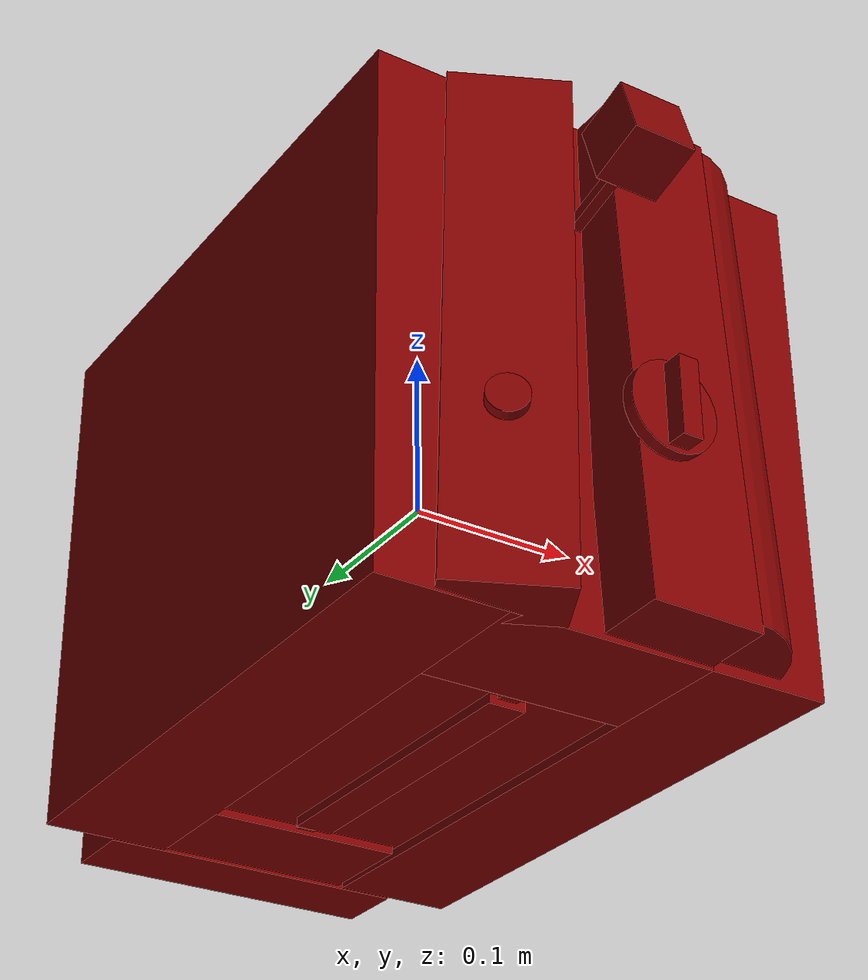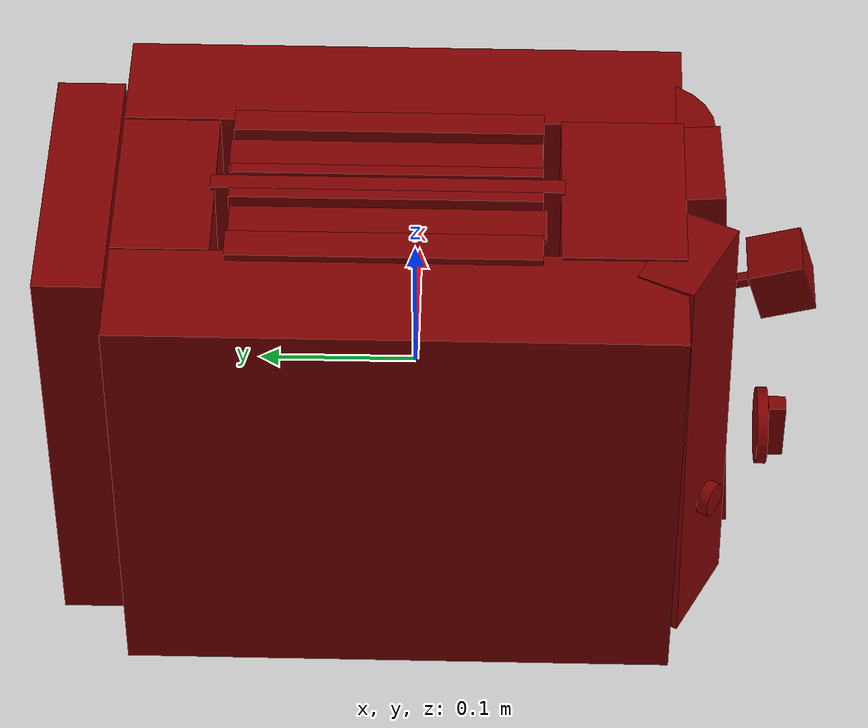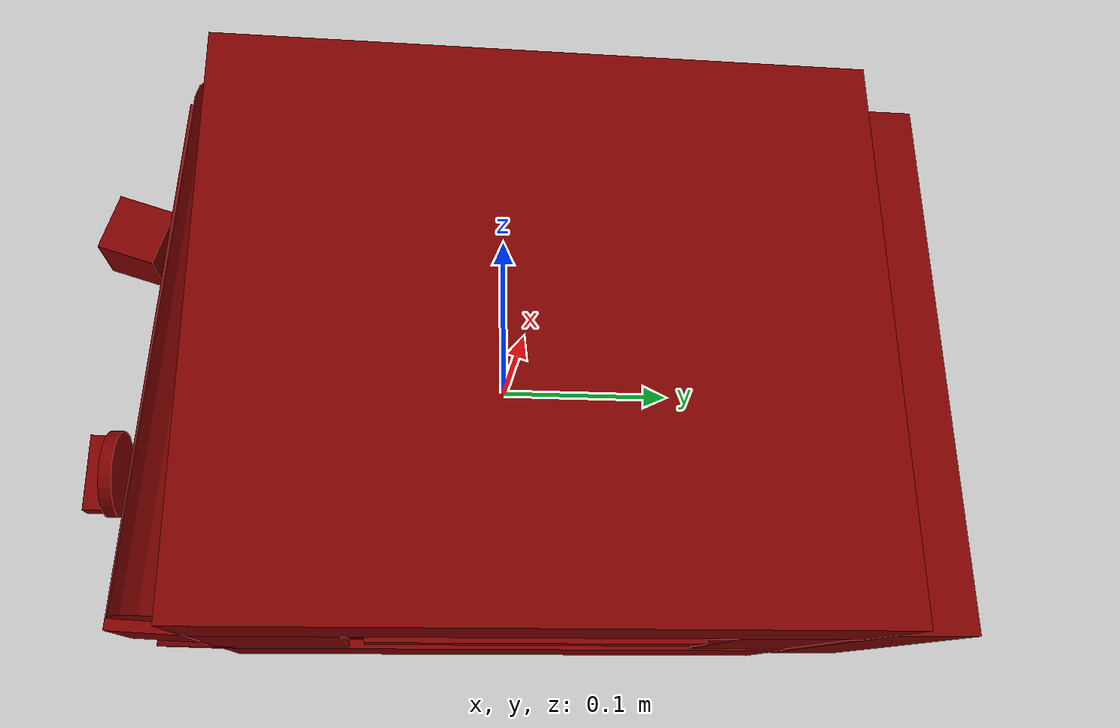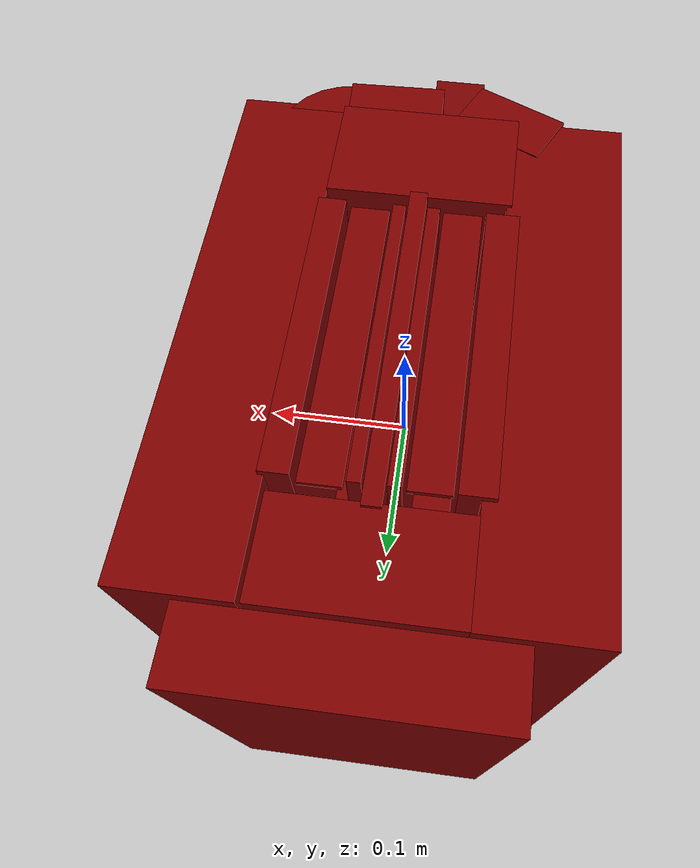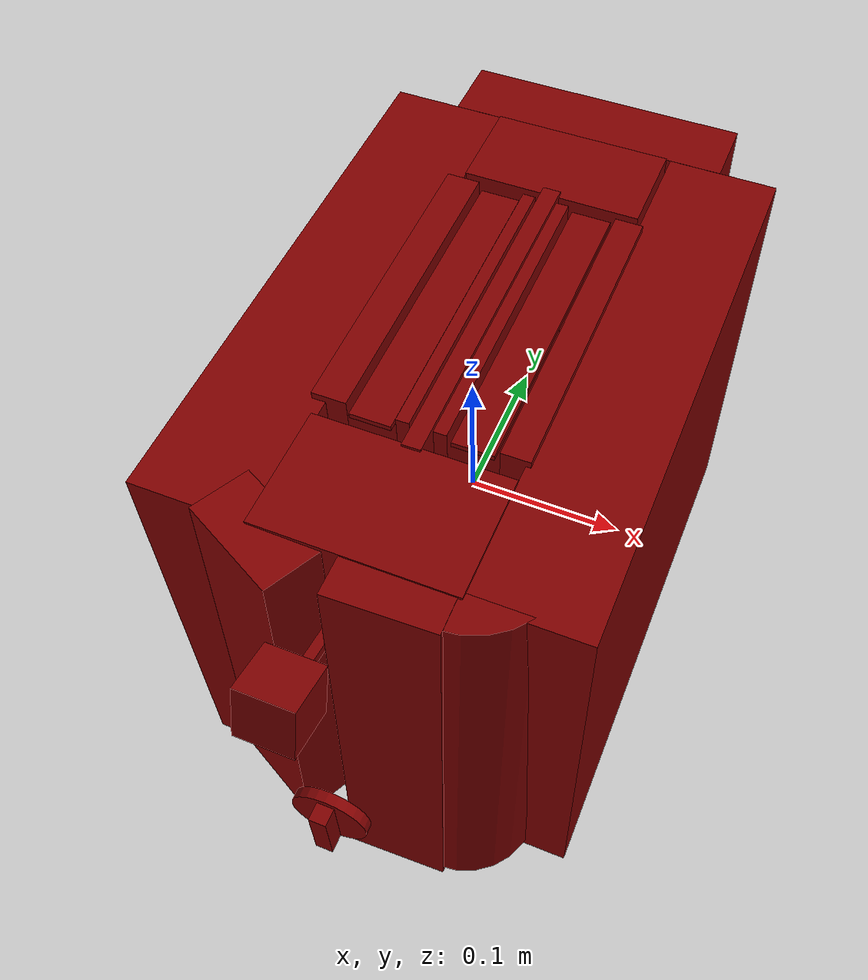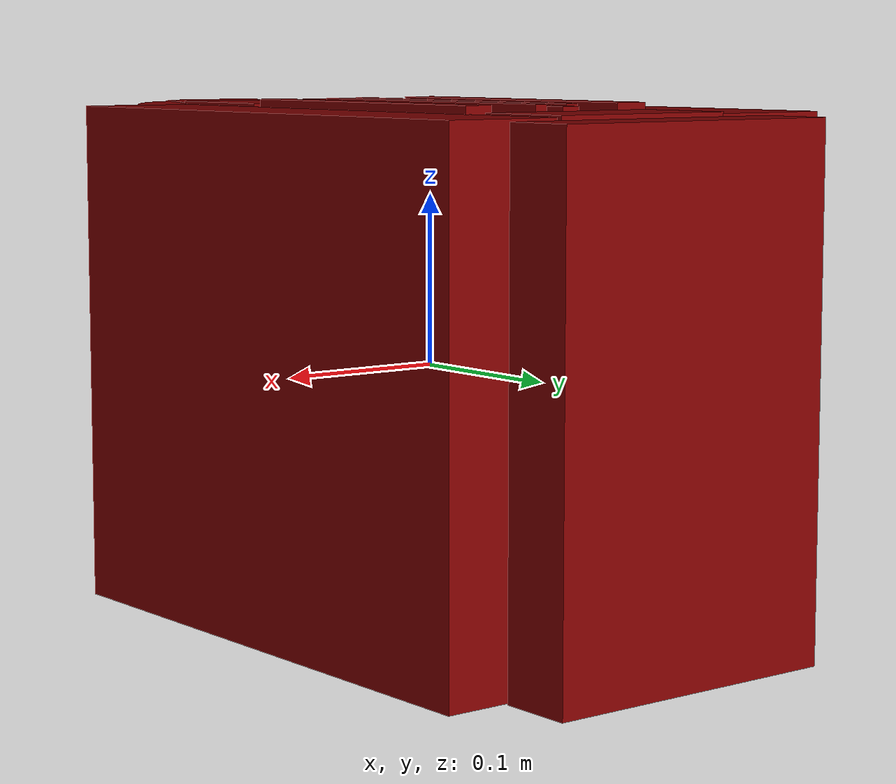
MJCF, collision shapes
<?xml version='1.0' encoding='UTF-8'?>
<mujoco model="model">
  <compiler angle="radian"/>
  <asset>
    <mesh file="visuals/Body001.obj" name="Body001_vis"/>
    <mesh file="visuals/Body002.obj" name="Body002_vis"/>
    <mesh file="visuals/Button001.obj" name="Button001_vis"/>
    <mesh file="visuals/Knob001.obj" name="Knob001_vis"/>
    <mesh file="visuals/Lever001.obj" name="Lever001_vis"/>
    <texture file="visuals/T_BC001.png" name="Body001_material" type="2d"/>
    <material name="Body001_material" rgba="1 1 1 1.0" texture="Body001_material" shininess="0.141421377658844" specular="0.3103448502657381"/>
    <texture file="visuals/T_BC001.png" name="Body002_material" type="2d"/>
    <material name="Body002_material" rgba="1 1 1 1.0" texture="Body002_material" shininess="0.141421377658844" specular="0.3103448502657381"/>
    <texture file="visuals/T_BC001.png" name="Button001_material" type="2d"/>
    <material name="Button001_material" rgba="1 1 1 1.0" texture="Button001_material" shininess="0.141421377658844" specular="0.3103448502657381"/>
    <texture file="visuals/T_BC001.png" name="Knob001_material" type="2d"/>
    <material name="Knob001_material" rgba="1 1 1 1.0" texture="Knob001_material" shininess="0.141421377658844" specular="0.3103448502657381"/>
    <texture file="visuals/T_BC001.png" name="Lever001_material" type="2d"/>
    <material name="Lever001_material" rgba="1 1 1 1.0" texture="Lever001_material" shininess="0.141421377658844" specular="0.3103448502657381"/>
  </asset>
  <default>
    <default class="visual">
      <geom conaffinity="0" contype="0" group="1" type="mesh"/>
    </default>
    <default class="collision">
      <geom group="0" rgba="0.5 0 0 0.5"/>
    </default>
    <default class="spawn">
      <geom group="0" rgba="1 1 1 0.5" contype="0" conaffinity="0"/>
      <site group="0" rgba="1 1 1 0.5"/>
    </default>
    <default class="region">
      <geom group="1" conaffinity="0" contype="0" rgba="0 1 0 0"/>
    </default>
  </default>
  <worldbody>
    <body>
      <body name="object">
        <geom mesh="Body001_vis" type="mesh" solimp="0.998 0.998 0.001" solref="0.001 1" density="100" friction="0.95 0.3 0.1" class="visual" material="Body001_material"/>
        <geom class="collision" type="box" pos="0.097324 0.008937 0.000482" size="0.03477196767926216 0.1749858260154724 0.14931738376617432" quat="1.0 0.0 0.0 0.0"/>
        <geom class="collision" type="box" pos="0.002510 -0.127867 0.001415" size="0.060178838670253754 0.03818193078041077 0.15024982392787933" quat="1.0 0.0 0.0 0.0"/>
        <geom class="collision" type="box" pos="0.002510 0.153569 0.001470" size="0.05729693919420242 0.030353715643286705 0.14931471645832062" quat="1.0 0.0 0.0 0.0"/>
        <geom class="collision" type="box" pos="0.004523 0.207233 -0.000266" size="0.09067270904779434 0.02142288349568844 0.14856651425361633" quat="1.0 0.0 0.0 0.0"/>
        <geom class="collision" type="box" pos="0.028037 -0.179501 0.001777" size="0.03240758180618286 0.018605414777994156 0.14931736886501312" quat="0.9995090961456299 -0.02830427512526512 -0.0002549346536397934 0.013431265950202942"/>
        <geom class="collision" type="box" pos="0.002510 0.017086 -0.013903" size="0.010774740017950535 0.09621493518352509 0.1349322497844696" quat="1.0 0.0 0.0 0.0"/>
        <geom class="collision" type="box" pos="-0.091009 0.008937 0.000482" size="0.03647923842072487 0.1749858260154724 0.14931738376617432" quat="1.0 0.0 0.0 0.0"/>
        <geom class="collision" type="box" pos="0.002510 0.017011 0.003987" size="0.005677978042513132 0.10907050967216492 0.14931704103946686" quat="1.0 0.0 0.0 0.0"/>
        <geom class="collision" type="box" pos="0.002510 0.017086 -0.135707" size="0.08502741158008575 0.12783825397491455 0.0076886191964149475" quat="1.0 0.0 0.0 0.0"/>
        <geom class="collision" type="cylinder" pos="0.057111 -0.147129 0.002444" size="0.04844741150736809 0.14617568254470825" quat="0.9995211362838745 -0.030944231897592545 -6.8709997464094884e-18 -9.504295779792034e-25"/>
        <geom class="collision" type="box" pos="-0.056065 -0.168523 0.000907" size="0.03240757808089256 0.018605414777994156 0.14931738376617432" quat="0.9727725982666016 -0.009991034865379333 0.015632834285497665 -0.23101787269115448"/>
        <body name="Body002">
          <geom mesh="Body002_vis" type="mesh" solimp="0.998 0.998 0.001" solref="0.001 1" density="100" friction="0.95 0.3 0.1" class="visual" material="Body002_material"/>
          <geom class="collision" type="box" pos="-0.052396 0.017786 0.058370" size="0.010541500523686409 0.09654990583658218 0.09608542919158936" quat="1.0 0.0 0.0 0.0"/>
          <geom class="collision" type="box" pos="-0.008388 0.017786 0.058370" size="0.003973815590143204 0.09654990583658218 0.09608542919158936" quat="1.0 0.0 0.0 0.0"/>
          <geom class="collision" type="box" pos="0.013553 0.017786 0.058370" size="0.003973815590143204 0.09654990583658218 0.09608542919158936" quat="1.0 0.0 0.0 0.0"/>
          <geom class="collision" type="box" pos="0.056756 0.017786 0.058370" size="0.008824016898870468 0.09654990583658218 0.09608542919158936" quat="1.0 0.0 0.0 0.0"/>
        </body>
        <body name="Button001">
          <joint axis="0.0 1.0 0.0" pos="-0.068716 -0.187764 -0.050512" limited="true" name="Button001_joint" range="0.0 0.0025" type="slide" damping="1" frictionloss="1" armature=".01" stiffness="0.05"/>
          <geom mesh="Button001_vis" type="mesh" solimp="0.998 0.998 0.001" solref="0.001 1" density="100" friction="0.95 0.3 0.1" class="visual" material="Button001_material"/>
          <geom class="collision" type="cylinder" pos="-0.069649 -0.189482 -0.050556" size="0.01105516403913498 0.0034786080941557884" quat="0.6980993151664734 0.6687564849853516 -0.17713183164596558 -0.18451668322086334"/>
        </body>
        <body name="Knob001">
          <joint axis="0.0 1.0 0.0" pos="-0.001919 -0.227984 -0.054317" limited="true" name="Knob001_joint" range="0.0 5.148721293383272" type="hinge" damping="0.05" armature="0.001"/>
          <geom mesh="Knob001_vis" type="mesh" solimp="0.998 0.998 0.001" solref="0.001 1" density="100" friction="0.95 0.3 0.1" class="visual" material="Knob001_material"/>
          <geom class="collision" type="box" pos="-0.001777 -0.234231 -0.054688" size="0.005658698733896017 0.005658698733896017 0.021840764209628105" quat="1.0 0.0 0.0 0.0"/>
          <geom class="collision" type="cylinder" pos="-0.001995 -0.224601 -0.054282" size="0.024918224662542343 0.003509973408654332" quat="0.7071067094802856 0.7071068286895752 0.0 0.0"/>
        </body>
        <body name="Lever001">
          <joint axis="0.0 0.0 -1.0" pos="-0.013004 -0.206555 0.096381" limited="true" name="Lever001_joint" range="0.0 0.09" type="slide" damping="1" frictionloss="1" armature=".01" stiffness="1" springref="-1.78"/>
          <geom mesh="Lever001_vis" type="mesh" solimp="0.998 0.998 0.001" solref="0.001 1" density="100" friction="0.95 0.3 0.1" class="visual" material="Lever001_material"/>
          <geom class="collision" type="box" pos="-0.012626 -0.190767 0.086732" size="0.0032166733872145414 0.02023816481232643 0.0032166740857064724" quat="0.991601288318634 -0.12933264672756195 2.385926210856731e-17 -5.251995115816093e-19"/>
          <geom class="collision" type="box" pos="0.032174 0.018790 0.147383" size="0.01255000103265047 0.09707515686750412 0.0016587881837040186" quat="1.0 0.0 0.0 0.0" name="slotR_floor"/>
          <geom class="collision" type="box" pos="-0.027143 0.016362 0.147383" size="0.012550000101327896 0.09707564860582352 0.0016587915597483516" quat="1.0 0.0 0.0 0.0" name="slotL_floor"/>
          <geom class="collision" type="box" pos="-0.013392 -0.227182 0.097544" size="0.018117601051926613 0.01795797049999237 0.017394397407770157" quat="0.5981364250183105 -0.8013942837715149 -1.7794529036411425e-16 -6.396756329023212e-24" name="lever_knob"/>
        </body>
        <geom class="region" name="reg_main" type="box" pos="0.0 0.016674000000000008 0.0" size="0.145814 0.22864600000000002 0.151189"/>
      </body>
    </body>
  </worldbody>
  <actuator>
    <motor name="Button001_joint_actuator" joint="Button001_joint" gear="0.5"/>
    <motor name="Knob001_joint_actuator" joint="Knob001_joint" gear="10"/>
    <motor name="Lever001_joint_actuator" joint="Lever001_joint" gear="3"/>
  </actuator>
</mujoco>
